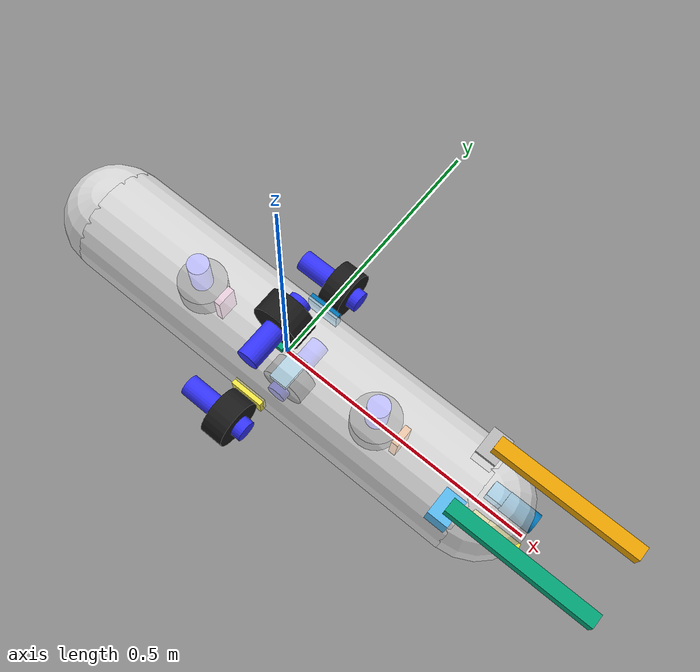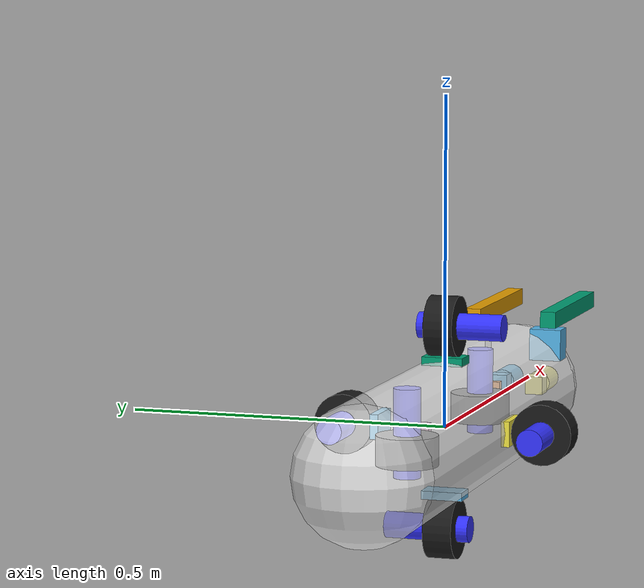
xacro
<?xml version="1.0"?>
<robot name="ucf_robosub" xmlns:xacro="http://www.ros.org/wiki/xacro">
    <xacro:include filename="$(find ucf_sub_definition)/urdf/sub_body.urdf.xacro"/>
    <xacro:include filename="$(find ucf_sub_definition)/urdf/sub_thruster.urdf.xacro"/>
    <xacro:include filename="$(find ucf_sub_definition)/urdf/sub_arm.urdf.xacro"/>
    <xacro:include filename="$(find ucf_sub_definition)/urdf/vision_cam.urdf.xacro"/>
    <sub_body />
    <sub_thruster identifier="topStrafe" parent="base_link" xPos="0.0" yPos="0.0" zPos="-0.1542" roll="3.141" pitch="0.0" yaw="1.571"/>
    <sub_thruster identifier="bottomStrafe" parent="base_link" xPos="0.0" yPos="0.0" zPos="0.1542" roll="0.0" pitch="0.0" yaw="-1.571"/>
    <sub_thruster identifier="leftSurge" parent="base_link" xPos="0.0" yPos="-0.1542" zPos="0.0" roll="1.571" pitch="3.141" yaw="0.0"/>
    <sub_thruster identifier="rightSurge" parent="base_link" xPos="0.0" yPos="0.1542" zPos="0.0" roll="-1.571" pitch="3.141" yaw="0.0"/>
    <sub_thruster identifier="frontVertical" parent="base_link" xPos="0.1968" yPos="0" zPos="0.0" roll="0.0" pitch="-1.571" yaw="0.0"/>
    <sub_thruster identifier="rearVertical" parent="base_link" xPos="-0.1968" yPos="0" zPos="0.0" roll="0.0" pitch="-1.571" yaw="0.0"/>
    <sub_arm identifier="right" parent="base_link" xPos="0.359" yPos="0.0878" zPos="0.0509" roll="0.0" pitch="0.0" yaw="0.0"/>
    <sub_arm identifier="left" parent="base_link" xPos="0.359" yPos="-0.0369" zPos="0.0509" roll="0.0" pitch="0.0" yaw="0.0"/>
    <sub_vision_cam identifier="left" parent="base_link" xPos="0.43" yPos="-0.03" zPos="0.0" roll="0.0" pitch="0.0" yaw="0.0"/>
    <sub_vision_cam identifier="right" parent="base_link" xPos="0.43" yPos="0.03" zPos="0.0" roll="0.0" pitch="0.0" yaw="0.0"/>
</robot>

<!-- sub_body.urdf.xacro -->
<robot xmlns:xacro="http://www.ros.org/wiki/xacro">
    <xacro:macro name="sub_body">
        <link name="base_link">
            <visual>
                <geometry>
                    <cylinder length="0.8068" radius="0.102"/>
                </geometry>
                <origin rpy="0 1.571 0"/>
                <material name="white">
                    <color rgba="1 1 1 0.7"/>
                </material>
            </visual>
            <visual>
                <geometry>
                    <sphere radius="0.102"/>
                </geometry>
                <origin xyz="0.4034 0 0"/>
                <material name="white"/>
            </visual>
            <visual>
                <geometry>
                    <sphere radius="0.102"/>
                </geometry>
                <origin xyz="-0.4034 0 0"/>
                <material name="white"/>
            </visual>
            <collision>
                <geometry>
                    <cylinder length="0.8068" radius="0.102"/>
                </geometry>
                <origin rpy="0 1.571 0"/>
            </collision>
            <collision>
                <geometry>
                    <sphere radius="0.102"/>
                </geometry>
                <origin xyz="0.4034 0 0"/>
            </collision>
            <collision>
                <geometry>
                    <sphere radius="0.102"/>
                </geometry>
                <origin xyz="-0.4034 0 0"/>
            </collision>
        </link>
    </xacro:macro>
</robot>

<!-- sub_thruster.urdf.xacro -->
<robot xmlns:xacro="http://www.ros.org/wiki/xacro">
    <xacro:macro name="sub_thruster" params="identifier parent xPos yPos zPos roll pitch yaw">
        <link name="${identifier}_thruster">
            <visual>
                <geometry>
                    <cylinder length="0.131" radius="0.02"/>
                </geometry>
                <origin rpy="0 -1.571 0" xyz="0.0253 0 0"/>
                <material name="blue">
                    <color rgba="0.2 0.2 1 1"/>
                </material>
            </visual>
            <visual>
                <geometry>
                    <cylinder length="0.0445" radius="0.0458"/>
                </geometry>
                <origin rpy="0 -1.571 0" xyz="0 0 0"/>
                <material name="black">
                    <color rgba="0.1 0.1 0.1 1"/>
                </material>
            </visual>
            <visual>
                <geometry>
                    <box size="0.0634 0.0128 0.0381"/>
                </geometry>
                <origin xyz="0 0 -0.0522" rpy="1.571 0 0"/>
            </visual>
        </link>
        <joint name="${identifier}_thruster_joint" type="fixed">
			<parent link="${parent}"/>
			<child link="${identifier}_thruster"/>
			<origin xyz="${xPos} ${yPos} ${zPos}" rpy="${roll} ${pitch} ${yaw}"/>
		</joint>
    </xacro:macro>
</robot>

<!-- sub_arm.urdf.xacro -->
<robot xmlns:xacro="http://www.ros.org/wiki/xacro">
    <xacro:macro name="sub_arm" params="identifier parent xPos yPos zPos roll pitch yaw">
        <link name="${identifier}_arm_base">
            <visual>
                <geometry>
                    <box size="0.0381 0.0509 0.05"/>
                </geometry>
                <origin rpy="0 0 0" xyz="0.0191 -0.0255 0.025"/>
            </visual>
        </link>
        <link name="${identifier}_arm_main">
            <visual>
                <geometry>
                    <box size="0.2667 0.0253 0.0262"/>
                </geometry>
                <origin rpy="0 0 0" xyz="0.13335 0 0"/>
            </visual>
        </link>
        <joint name="${identifier}_arm_base_joint" type="fixed">
			<parent link="${parent}"/>
			<child link="${identifier}_arm_base"/>
			<origin xyz="${xPos} ${yPos} ${zPos}" rpy="${roll} ${pitch} ${yaw}"/>
		</joint>
		<joint name="${identifier}_arm_pivot_joint" type="revolute">
		    <parent link="${identifier}_arm_base"/>
		    <child link="${identifier}_arm_main"/>
		    <origin xyz="0.019 -0.0254 0.0631" rpy="0 0 0"/>
		    <axis xyz="0 1 0"/>
		    <limit lower="-1.57" upper="0.2" effort="2.8" velocity="20"/>
		</joint>
    </xacro:macro>
</robot>

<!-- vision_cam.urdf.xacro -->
<robot xmlns:xacro="http://www.ros.org/wiki/xacro">
    <xacro:macro name="sub_vision_cam" params="identifier parent xPos yPos zPos roll pitch yaw">
        <link name="${identifier}_vision_cam">
            <visual>
                <geometry>
                    <box size="0.030 0.029 0.029"/>
                </geometry>
                <origin rpy="0 0 0" xyz="0 0 0"/>
            </visual>
            <visual>
                <geometry>
                    <cylinder radius="0.0187" length="0.061"/>
                </geometry>
                <origin rpy="0 1.571 0" xyz="0.045 0 0"/>
            </visual>
        </link>
        <joint name="${identifier}_cam_joint" type="fixed">
			<parent link="${parent}"/>
			<child link="${identifier}_vision_cam"/>
			<origin xyz="${xPos} ${yPos} ${zPos}" rpy="${roll} ${pitch} ${yaw}"/>
		</joint>
    </xacro:macro>
</robot>
